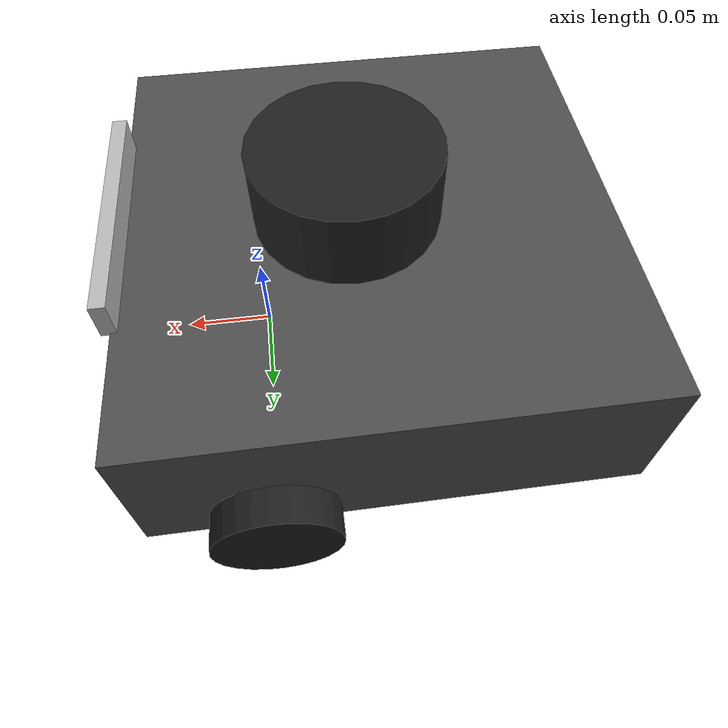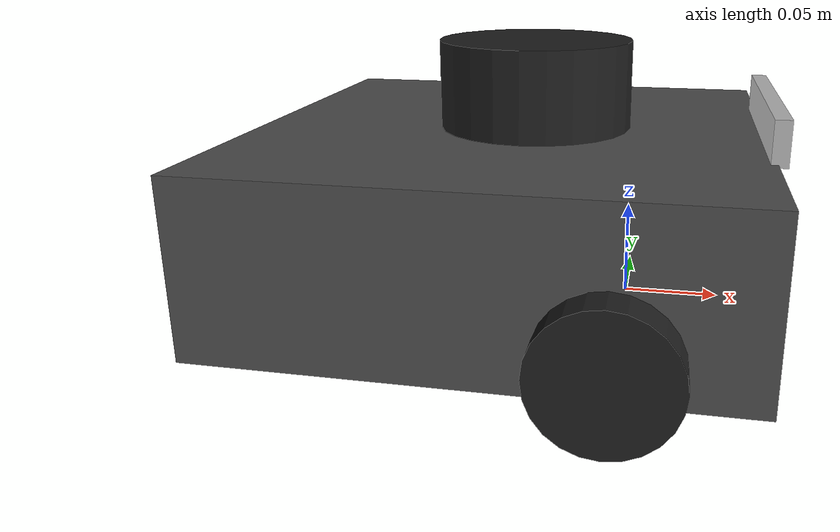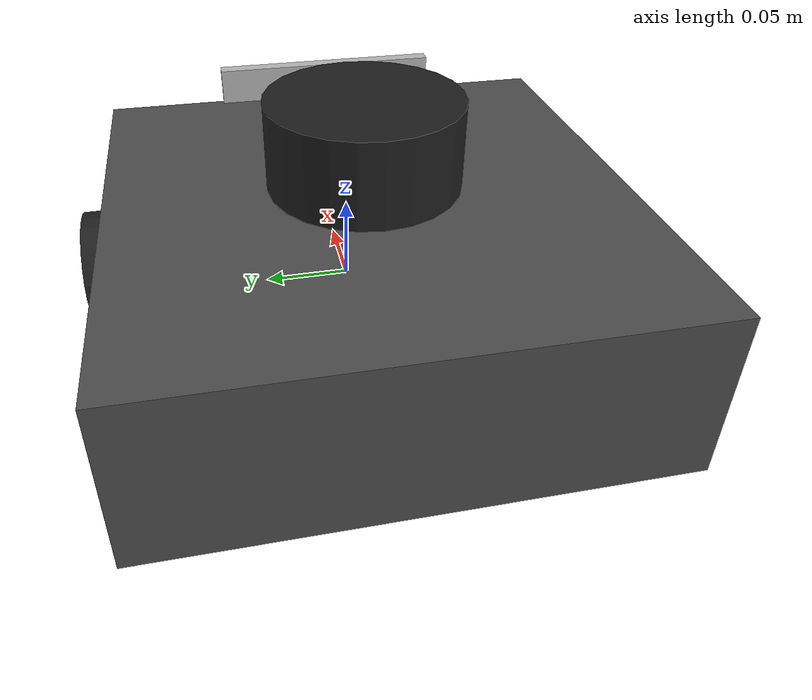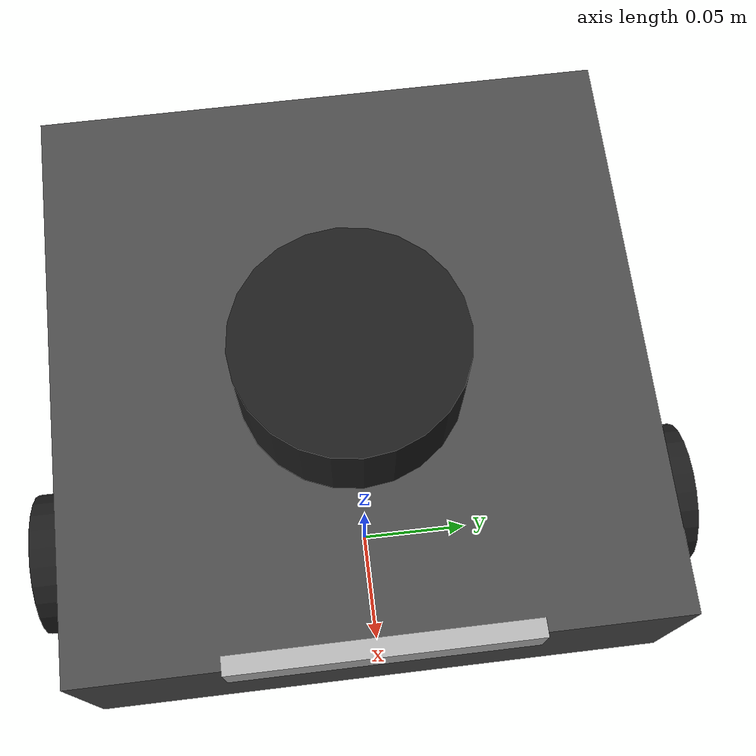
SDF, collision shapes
<!-- This is the same turtlebot model in nav2 with the following changes -->
<!-- 1. A GPS sensor is added -->
<!-- 2. A link for the GPS sensor is added -->
<!-- 3. The diff drive plugin does not publish the tf between odom->base_footprint, which is done by RL -->

<?xml version="1.0"?>
<sdf version="1.6">
    <model name="turtlebot_waffle_gps">
      <pose>0.0 0.0 0.0 0.0 0.0 0.0</pose>

      <link name="base_footprint"/>

      <link name="base_link">

        <inertial>
          <pose>-0.064 0 0.048 0 0 0</pose>
          <inertia>
            <ixx>0.001</ixx>
            <ixy>0.000</ixy>
            <ixz>0.000</ixz>
            <iyy>0.001</iyy>
            <iyz>0.000</iyz>
            <izz>0.001</izz>
          </inertia>
          <mass>1.0</mass>
        </inertial>

        <collision name="base_collision">
          <pose>-0.064 0 0.048 0 0 0</pose>
          <geometry>
            <box>
              <size>0.265 0.265 0.089</size>
            </box>
          </geometry>
        </collision>

        <visual name="base_visual">
          <pose>-0.064 0 0 0 0 0</pose>
          <geometry>
            <mesh>
              <uri>model://turtlebot3_common/meshes/waffle_base.dae</uri>
              <scale>0.001 0.001 0.001</scale>
            </mesh>
          </geometry>
          <material>
            <script>
              <uri>file://media/materials/scripts/gazebo.material</uri>
              <name>Gazebo/DarkGrey</name>
            </script>
          </material>
        </visual>
      </link>

      <link name="imu_link">
        <sensor name="tb3_imu" type="imu">
          <always_on>true</always_on>
          <update_rate>200</update_rate>
          <imu>
            <angular_velocity>
              <x>
                <noise type="gaussian">
                  <mean>0.0</mean>
                  <stddev>2e-4</stddev>
                </noise>
              </x>
              <y>
                <noise type="gaussian">
                  <mean>0.0</mean>
                  <stddev>2e-4</stddev>
                </noise>
              </y>
              <z>
                <noise type="gaussian">
                  <mean>0.0</mean>
                  <stddev>2e-4</stddev>
                </noise>
              </z>
            </angular_velocity>
            <linear_acceleration>
              <x>
                <noise type="gaussian">
                  <mean>0.0</mean>
                  <stddev>1.7e-2</stddev>
                </noise>
              </x>
              <y>
                <noise type="gaussian">
                  <mean>0.0</mean>
                  <stddev>1.7e-2</stddev>
                </noise>
              </y>
              <z>
                <noise type="gaussian">
                  <mean>0.0</mean>
                  <stddev>1.7e-2</stddev>
                </noise>
              </z>
            </linear_acceleration>
          </imu>
          <plugin name="turtlebot3_imu" filename="libgazebo_ros_imu_sensor.so">
            <initial_orientation_as_reference>false</initial_orientation_as_reference>
            <ros>
              <remapping>~/out:=imu</remapping>
              </ros>
          </plugin>
        </sensor>
      </link>

      <link name="gps_link">
      <!-- Some weird bug occurs if this joint gets the default inertia -->
        <inertial>
          <pose>-0.052 0 0.111 0 0 0</pose>
          <inertia>
            <mass>0.001</mass>
            <ixx>0.001</ixx>
            <ixy>0.000</ixy>
            <ixz>0.000</ixz>
            <iyy>0.001</iyy>
            <iyz>0.000</iyz>
            <izz>0.001</izz>
          </inertia>
          <mass>0.125</mass>
        </inertial>
        <sensor name="tb3_gps" type="gps">
          <always_on>true</always_on>
          <update_rate>1</update_rate>
          <pose>0 0 0 0 0 0</pose>
          <gps>
            <position_sensing>
              <horizontal>
                <noise type="gaussian">
                  <mean>0.0</mean>
                  <stddev>0.01</stddev>
                </noise>
              </horizontal>
              <vertical>
                <noise type="gaussian">
                  <mean>0.0</mean>
                  <stddev>0.01</stddev>
                </noise>
              </vertical>
            </position_sensing>
          </gps>
          <plugin name="my_gps_plugin" filename="libgazebo_ros_gps_sensor.so">
            <ros>
              <remapping>~/out:=/gps/fix</remapping>
            </ros>
          </plugin>
        </sensor>
      </link>

      <link name="base_scan">
        <inertial>
          <pose>-0.064 0 0.121 0 0 0</pose>
          <inertia>
            <ixx>0.001</ixx>
            <ixy>0.000</ixy>
            <ixz>0.000</ixz>
            <iyy>0.001</iyy>
            <iyz>0.000</iyz>
            <izz>0.001</izz>
          </inertia>
          <mass>0.125</mass>
        </inertial>

        <collision name="lidar_sensor_collision">
          <pose>-0.052 0 0.111 0 0 0</pose>
          <geometry>
            <cylinder>
              <radius>0.0508</radius>
              <length>0.055</length>
            </cylinder>
          </geometry>
        </collision>

        <visual name="lidar_sensor_visual">
          <pose>-0.064 0 0.121 0 0 0</pose>
          <geometry>
            <mesh>
              <uri>model://turtlebot3_common/meshes/lds.dae</uri>
              <scale>0.001 0.001 0.001</scale>
            </mesh>
          </geometry>
          <material>
            <script>
              <uri>file://media/materials/scripts/gazebo.material</uri>
              <name>Gazebo/FlatBlack</name>
            </script>
          </material>
        </visual>

        <sensor name="hls_lfcd_lds" type="ray">
          <always_on>true</always_on>
          <visualize>false</visualize>
          <pose>-0.064 0 0.15 0 0 0</pose>
          <update_rate>5</update_rate>
          <ray>
            <scan>
              <horizontal>
                <samples>240</samples>
                <resolution>1.000000</resolution>
                <min_angle>-2.094</min_angle>
                <max_angle>2.094</max_angle>
              </horizontal>
            </scan>
            <range>
              <min>0.12</min>
              <max>20.0</max>
              <resolution>0.015000</resolution>
            </range>
            <noise>
              <type>gaussian</type>
              <mean>0.0</mean>
              <stddev>0.01</stddev>
            </noise>
          </ray>
          <plugin name="turtlebot3_laserscan" filename="libgazebo_ros_ray_sensor.so">
            <ros>
                <remapping>~/out:=scan</remapping>
            </ros>
            <output_type>sensor_msgs/LaserScan</output_type>
            <frame_name>base_scan</frame_name>
          </plugin>
        </sensor>
      </link>

      <link name="wheel_left_link">

        <inertial>
          <pose>0.0 0.144 0.023 -1.57 0 0</pose>
          <inertia>
            <ixx>0.001</ixx>
            <ixy>0.000</ixy>
            <ixz>0.000</ixz>
            <iyy>0.001</iyy>
            <iyz>0.000</iyz>
            <izz>0.001</izz>
          </inertia>
          <mass>0.1</mass>
        </inertial>

        <collision name="wheel_left_collision">
          <pose>0.0 0.144 0.023 -1.57 0 0</pose>
          <geometry>
            <cylinder>
              <radius>0.033</radius>
              <length>0.018</length>
            </cylinder>
          </geometry>
          <surface>
            <!-- This friction pamareter don't contain reliable data!! -->
            <friction>
              <ode>
                <mu>100000.0</mu>
                <mu2>100000.0</mu2>
                <fdir1>0 0 0</fdir1>
                <slip1>0.0</slip1>
                <slip2>0.0</slip2>
              </ode>
            </friction>
            <contact>
              <ode>
                <soft_cfm>0</soft_cfm>
                <soft_erp>0.2</soft_erp>
                <kp>1e+5</kp>
                <kd>1</kd>
                <max_vel>0.01</max_vel>
                <min_depth>0.001</min_depth>
              </ode>
            </contact>
          </surface>
        </collision>

        <visual name="wheel_left_visual">
          <pose>0.0 0.144 0.023 0 0 0</pose>
          <geometry>
            <mesh>
              <uri>model://turtlebot3_common/meshes/tire.dae</uri>
              <scale>0.001 0.001 0.001</scale>
            </mesh>
          </geometry>
          <material>
            <script>
              <uri>file://media/materials/scripts/gazebo.material</uri>
              <name>Gazebo/FlatBlack</name>
            </script>
          </material>
        </visual>
      </link>

      <link name="wheel_right_link">

        <inertial>
          <pose>0.0 -0.144 0.023 -1.57 0 0</pose>
          <inertia>
            <ixx>0.001</ixx>
            <ixy>0.000</ixy>
            <ixz>0.000</ixz>
            <iyy>0.001</iyy>
            <iyz>0.000</iyz>
            <izz>0.001</izz>
          </inertia>
          <mass>0.1</mass>
        </inertial>

        <collision name="wheel_right_collision">
          <pose>0.0 -0.144 0.023 -1.57 0 0</pose>
          <geometry>
            <cylinder>
              <radius>0.033</radius>
              <length>0.018</length>
            </cylinder>
          </geometry>
          <surface>
            <!-- This friction pamareter don't contain reliable data!! -->
            <friction>
              <ode>
                <mu>100000.0</mu>
                <mu2>100000.0</mu2>
                <fdir1>0 0 0</fdir1>
                <slip1>0.0</slip1>
                <slip2>0.0</slip2>
              </ode>
            </friction>
            <contact>
              <ode>
                <soft_cfm>0</soft_cfm>
                <soft_erp>0.2</soft_erp>
                <kp>1e+5</kp>
                <kd>1</kd>
                <max_vel>0.01</max_vel>
                <min_depth>0.001</min_depth>
              </ode>
            </contact>
          </surface>
        </collision>

        <visual name="wheel_right_visual">
          <pose>0.0 -0.144 0.023 0 0 0</pose>
          <geometry>
            <mesh>
              <uri>model://turtlebot3_common/meshes/tire.dae</uri>
              <scale>0.001 0.001 0.001</scale>
            </mesh>
          </geometry>
          <material>
            <script>
              <uri>file://media/materials/scripts/gazebo.material</uri>
              <name>Gazebo/FlatBlack</name>
            </script>
          </material>
        </visual>
      </link>

      <link name='caster_back_right_link'>
        <pose>-0.177 -0.064 -0.004 0 0 0</pose>
        <inertial>
          <mass>0.001</mass>
          <inertia>
            <ixx>0.00001</ixx>
            <ixy>0.000</ixy>
            <ixz>0.000</ixz>
            <iyy>0.00001</iyy>
            <iyz>0.000</iyz>
            <izz>0.00001</izz>
          </inertia>
        </inertial>
        <collision name='collision'>
          <geometry>
            <sphere>
              <radius>0.005000</radius>
            </sphere>
          </geometry>
          <surface>
            <contact>
              <ode>
                <soft_cfm>0</soft_cfm>
                <soft_erp>0.2</soft_erp>
                <kp>1e+5</kp>
                <kd>1</kd>
                <max_vel>0.01</max_vel>
                <min_depth>0.001</min_depth>
              </ode>
            </contact>
          </surface>
        </collision>
      </link>

      <link name='caster_back_left_link'>
        <pose>-0.177 0.064 -0.004 0 0 0</pose>
        <inertial>
          <mass>0.001</mass>
          <inertia>
            <ixx>0.00001</ixx>
            <ixy>0.000</ixy>
            <ixz>0.000</ixz>
            <iyy>0.00001</iyy>
            <iyz>0.000</iyz>
            <izz>0.00001</izz>
          </inertia>
        </inertial>
        <collision name='collision'>
          <geometry>
            <sphere>
              <radius>0.005000</radius>
            </sphere>
          </geometry>
          <surface>
            <contact>
              <ode>
                <soft_cfm>0</soft_cfm>
                <soft_erp>0.2</soft_erp>
                <kp>1e+5</kp>
                <kd>1</kd>
                <max_vel>0.01</max_vel>
                <min_depth>0.001</min_depth>
              </ode>
            </contact>
          </surface>
        </collision>
      </link>

      <link name="camera_link">
        <inertial>
          <pose>0.069 -0.047 0.107 0 0 0</pose>
          <inertia>
            <ixx>0.001</ixx>
            <ixy>0.000</ixy>
            <ixz>0.000</ixz>
            <iyy>0.001</iyy>
            <iyz>0.000</iyz>
            <izz>0.001</izz>
          </inertia>
          <mass>0.035</mass>
        </inertial>
        <collision name="collision">
          <pose>0 0.047 -0.005 0 0 0</pose>
          <geometry>
            <box>
              <size>0.008 0.130 0.022</size>
            </box>
          </geometry>
        </collision>

        <pose>0.069 -0.047 0.107 0 0 0</pose>

        <sensor name="intel_realsense_r200_depth" type="depth">
          <always_on>1</always_on>
          <update_rate>5</update_rate>
          <pose>0.064 -0.047 0.107 0 0 0</pose>
          <camera name="realsense_depth_camera">
          </camera>
          <plugin name="intel_realsense_r200_depth_driver" filename="libgazebo_ros_camera.so">
            <ros>
            </ros>
            <camera_name>intel_realsense_r200_depth</camera_name>
            <frame_name>camera_depth_frame</frame_name>
            <hack_baseline>0.07</hack_baseline>
            <min_depth>0.001</min_depth>
            <max_depth>5.0</max_depth>
          </plugin>
        </sensor>
      </link>

      <joint name="base_joint" type="fixed">
        <parent>base_footprint</parent>
        <child>base_link</child>
        <pose>0.0 0.0 0.010 0 0 0</pose>
      </joint>

      <joint name="imu_joint" type="fixed">
        <parent>base_link</parent>
        <child>imu_link</child>
        <pose>-0.032 0 0.068 0 0 0</pose>
        <axis>
          <xyz>0 0 1</xyz>
        </axis>
      </joint>

      <joint name="gps_joint" type="fixed">
        <parent>base_link</parent>
        <child>gps_link</child>
        <pose>-0.05 0 0.05 0 0 0</pose>
        <axis>
          <xyz>0 0 1</xyz>
        </axis>
      </joint>

      <joint name="wheel_left_joint" type="revolute">
        <parent>base_link</parent>
        <child>wheel_left_link</child>
        <pose>0.0 0.144 0.023 -1.57 0 0</pose>
        <axis>
          <xyz>0 0 1</xyz>
        </axis>
      </joint>

      <joint name="wheel_right_joint" type="revolute">
        <parent>base_link</parent>
        <child>wheel_right_link</child>
        <pose>0.0 -0.144 0.023 -1.57 0 0</pose>
        <axis>
          <xyz>0 0 1</xyz>
        </axis>
      </joint>

      <joint name='caster_back_right_joint' type='ball'>
        <parent>base_link</parent>
        <child>caster_back_right_link</child>
      </joint>

      <joint name='caster_back_left_joint' type='ball'>
        <parent>base_link</parent>
        <child>caster_back_left_link</child>
      </joint>

      <joint name="lidar_joint" type="fixed">
        <parent>base_link</parent>
        <child>base_scan</child>
        <pose>-0.064 0 0.121 0 0 0</pose>
        <axis>
          <xyz>0 0 1</xyz>
        </axis>
      </joint>

      <joint name="camera_joint" type="fixed">
        <parent>base_link</parent>
        <child>camera_link</child>
        <pose>0.064 -0.065 0.094 0 0 0</pose>
        <axis>
          <xyz>0 0 1</xyz>
        </axis>
      </joint>

      <plugin name="turtlebot3_diff_drive" filename="libgazebo_ros_diff_drive.so">

        <ros>
          <!--since gazebo_plugins publish tf topic in global namespace /tf only and it
            cannot be remapped like (namespace/tf) through launch arguments -->
          <remapping>/tf:=tf</remapping>
        </ros>

        <update_rate>30</update_rate>

        <!-- wheels -->
        <left_joint>wheel_left_joint</left_joint>
        <right_joint>wheel_right_joint</right_joint>

        <!-- kinematics -->
        <wheel_separation>0.287</wheel_separation>
        <wheel_diameter>0.066</wheel_diameter>

        <!-- limits -->
        <max_wheel_torque>20</max_wheel_torque>
        <max_wheel_acceleration>1.0</max_wheel_acceleration>

        <command_topic>cmd_vel</command_topic>

        <!-- output -->
        <!-- The odom -> base link transform is published by the ekf in robot localization -->
        <publish_odom>true</publish_odom>
        <publish_odom_tf>false</publish_odom_tf>
        <publish_wheel_tf>false</publish_wheel_tf>

        <odometry_topic>odom</odometry_topic>
        <odometry_frame>odom</odometry_frame>
        <robot_base_frame>base_footprint</robot_base_frame>

      </plugin>

      <plugin name="turtlebot3_joint_state" filename="libgazebo_ros_joint_state_publisher.so">
        <ros>
            <remapping>~/out:=joint_states</remapping>
        </ros>
        <update_rate>30</update_rate>
        <joint_name>wheel_left_joint</joint_name>
        <joint_name>wheel_right_joint</joint_name>
      </plugin>

    </model>
</sdf>
